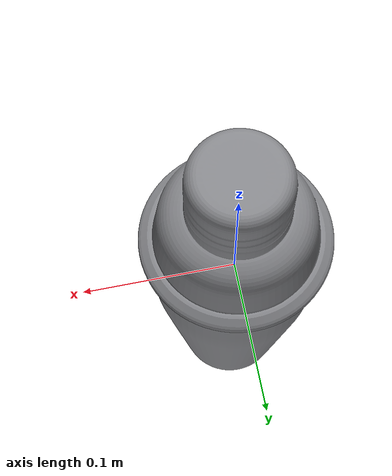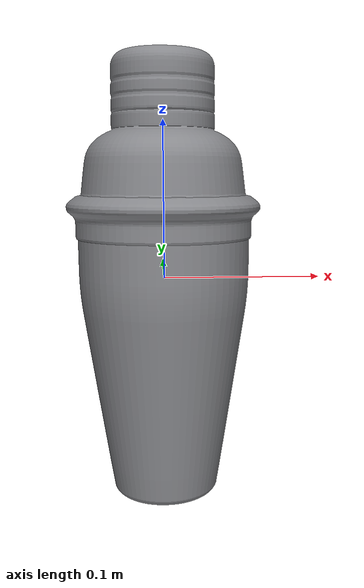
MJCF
<?xml version="1.0" ?>
<mujoco model="mixer">
	<compiler meshdir="mixer/meshes" texturedir="mixer/textures" angle="radian" autolimits="true" balanceinertia="true" boundmass="0.000001" boundinertia="0.000001"/>
	<default>
		<default class="visual">
			<geom contype="0" conaffinity="0"/>
		</default>
		<default class="collision">
			<geom rgba="1.0 0.0 0.0 0.0"/>
		</default>
	</default>
	<asset>
		<mesh name="MixerCover" file="stl/MixerCover.stl" scale="1.0 1.0 1.0"/>
		<mesh name="MixerCover_001" file="stl/MixerCover_001.stl" scale="1.0 1.0 1.0"/>
		<mesh name="MixerCover_002" file="stl/MixerCover_002.stl" scale="1.0 1.0 1.0"/>
		<mesh name="MixerCover_003" file="stl/MixerCover_003.stl" scale="1.0 1.0 1.0"/>
		<mesh name="MixerCover_004" file="stl/MixerCover_004.stl" scale="1.0 1.0 1.0"/>
		<mesh name="MixerCover_005" file="stl/MixerCover_005.stl" scale="1.0 1.0 1.0"/>
		<mesh name="MixerCover_006" file="stl/MixerCover_006.stl" scale="1.0 1.0 1.0"/>
		<mesh name="MixerCover_007" file="stl/MixerCover_007.stl" scale="1.0 1.0 1.0"/>
		<mesh name="MixerCover_008" file="stl/MixerCover_008.stl" scale="1.0 1.0 1.0"/>
		<mesh name="MixerCover_009" file="stl/MixerCover_009.stl" scale="1.0 1.0 1.0"/>
		<mesh name="MixerCover_010" file="stl/MixerCover_010.stl" scale="1.0 1.0 1.0"/>
		<mesh name="MixerCover_011" file="stl/MixerCover_011.stl" scale="1.0 1.0 1.0"/>
		<mesh name="MixerCover_012" file="stl/MixerCover_012.stl" scale="1.0 1.0 1.0"/>
		<mesh name="MixerCover_013" file="stl/MixerCover_013.stl" scale="1.0 1.0 1.0"/>
		<mesh name="MixerCover_014" file="stl/MixerCover_014.stl" scale="1.0 1.0 1.0"/>
		<mesh name="MixerCover_015" file="stl/MixerCover_015.stl" scale="1.0 1.0 1.0"/>
		<mesh name="MixerCover_016" file="stl/MixerCover_016.stl" scale="1.0 1.0 1.0"/>
		<mesh name="MixerCover_017" file="stl/MixerCover_017.stl" scale="1.0 1.0 1.0"/>
		<mesh name="MixerCover_018" file="stl/MixerCover_018.stl" scale="1.0 1.0 1.0"/>
		<mesh name="MixerCover_019" file="stl/MixerCover_019.stl" scale="1.0 1.0 1.0"/>
		<mesh name="MixerCover_020" file="stl/MixerCover_020.stl" scale="1.0 1.0 1.0"/>
		<mesh name="MixerCover_021" file="stl/MixerCover_021.stl" scale="1.0 1.0 1.0"/>
		<mesh name="MixerCover_022" file="stl/MixerCover_022.stl" scale="1.0 1.0 1.0"/>
		<mesh name="MixerCover_023" file="stl/MixerCover_023.stl" scale="1.0 1.0 1.0"/>
		<mesh name="MixerCover_024" file="stl/MixerCover_024.stl" scale="1.0 1.0 1.0"/>
		<mesh name="MixerCover_025" file="stl/MixerCover_025.stl" scale="1.0 1.0 1.0"/>
		<mesh name="MixerCover_026" file="stl/MixerCover_026.stl" scale="1.0 1.0 1.0"/>
		<mesh name="MixerCover_027" file="stl/MixerCover_027.stl" scale="1.0 1.0 1.0"/>
		<mesh name="MixerCover_028" file="stl/MixerCover_028.stl" scale="1.0 1.0 1.0"/>
		<mesh name="MixerCover_029" file="stl/MixerCover_029.stl" scale="1.0 1.0 1.0"/>
		<mesh name="MixerCover_030" file="stl/MixerCover_030.stl" scale="1.0 1.0 1.0"/>
		<mesh name="MixerCover_031" file="stl/MixerCover_031.stl" scale="1.0 1.0 1.0"/>
		<mesh name="MixerCover_032" file="stl/MixerCover_032.stl" scale="1.0 1.0 1.0"/>
		<mesh name="MixerCover_033" file="stl/MixerCover_033.stl" scale="1.0 1.0 1.0"/>
		<mesh name="MixerCover_034" file="stl/MixerCover_034.stl" scale="1.0 1.0 1.0"/>
		<mesh name="MixerCover_035" file="stl/MixerCover_035.stl" scale="1.0 1.0 1.0"/>
		<mesh name="MixerCover_036" file="stl/MixerCover_036.stl" scale="1.0 1.0 1.0"/>
		<mesh name="MixerCover_037" file="stl/MixerCover_037.stl" scale="1.0 1.0 1.0"/>
		<mesh name="MixerCover_038" file="stl/MixerCover_038.stl" scale="1.0 1.0 1.0"/>
		<mesh name="MixerCover_039" file="stl/MixerCover_039.stl" scale="1.0 1.0 1.0"/>
		<mesh name="MixerCover_040" file="stl/MixerCover_040.stl" scale="1.0 1.0 1.0"/>
		<mesh name="MixerCover_041" file="stl/MixerCover_041.stl" scale="1.0 1.0 1.0"/>
		<mesh name="MixerCover_042" file="stl/MixerCover_042.stl" scale="1.0 1.0 1.0"/>
		<mesh name="MixerCover_043" file="stl/MixerCover_043.stl" scale="1.0 1.0 1.0"/>
		<mesh name="MixerCover_044" file="stl/MixerCover_044.stl" scale="1.0 1.0 1.0"/>
		<mesh name="MixerCover_045" file="stl/MixerCover_045.stl" scale="1.0 1.0 1.0"/>
		<mesh name="MixerCover_046" file="stl/MixerCover_046.stl" scale="1.0 1.0 1.0"/>
		<mesh name="MixerCover_047" file="stl/MixerCover_047.stl" scale="1.0 1.0 1.0"/>
		<mesh name="MixerCover_048" file="stl/MixerCover_048.stl" scale="1.0 1.0 1.0"/>
		<mesh name="MixerCover_049" file="stl/MixerCover_049.stl" scale="1.0 1.0 1.0"/>
		<mesh name="MixerCover_050" file="stl/MixerCover_050.stl" scale="1.0 1.0 1.0"/>
		<mesh name="MixerCover_051" file="stl/MixerCover_051.stl" scale="1.0 1.0 1.0"/>
		<mesh name="MixerCover_052" file="stl/MixerCover_052.stl" scale="1.0 1.0 1.0"/>
		<mesh name="MixerCover_053" file="stl/MixerCover_053.stl" scale="1.0 1.0 1.0"/>
		<mesh name="MixerCover_054" file="stl/MixerCover_054.stl" scale="1.0 1.0 1.0"/>
		<mesh name="MixerCover_055" file="stl/MixerCover_055.stl" scale="1.0 1.0 1.0"/>
		<mesh name="MixerCover_056" file="stl/MixerCover_056.stl" scale="1.0 1.0 1.0"/>
		<mesh name="MixerCover_057" file="stl/MixerCover_057.stl" scale="1.0 1.0 1.0"/>
		<mesh name="MixerCover_058" file="stl/MixerCover_058.stl" scale="1.0 1.0 1.0"/>
		<mesh name="MixerCover_059" file="stl/MixerCover_059.stl" scale="1.0 1.0 1.0"/>
		<mesh name="MixerCover_060" file="stl/MixerCover_060.stl" scale="1.0 1.0 1.0"/>
		<mesh name="MixerCover_061" file="stl/MixerCover_061.stl" scale="1.0 1.0 1.0"/>
		<mesh name="MixerCover_062" file="stl/MixerCover_062.stl" scale="1.0 1.0 1.0"/>
		<mesh name="MixerCover_063" file="stl/MixerCover_063.stl" scale="1.0 1.0 1.0"/>
		<mesh name="MixerCover_064" file="stl/MixerCover_064.stl" scale="1.0 1.0 1.0"/>
		<mesh name="MixerCover_065" file="stl/MixerCover_065.stl" scale="1.0 1.0 1.0"/>
		<mesh name="MixerCover_066" file="stl/MixerCover_066.stl" scale="1.0 1.0 1.0"/>
		<mesh name="MixerCover_067" file="stl/MixerCover_067.stl" scale="1.0 1.0 1.0"/>
		<mesh name="MixerCover_068" file="stl/MixerCover_068.stl" scale="1.0 1.0 1.0"/>
		<mesh name="MixerCover_069" file="stl/MixerCover_069.stl" scale="1.0 1.0 1.0"/>
		<mesh name="MixerCover_070" file="stl/MixerCover_070.stl" scale="1.0 1.0 1.0"/>
		<mesh name="MixerCover_071" file="stl/MixerCover_071.stl" scale="1.0 1.0 1.0"/>
		<mesh name="MixerCover_072" file="stl/MixerCover_072.stl" scale="1.0 1.0 1.0"/>
		<mesh name="MixerCover_073" file="stl/MixerCover_073.stl" scale="1.0 1.0 1.0"/>
		<mesh name="MixerCover_074" file="stl/MixerCover_074.stl" scale="1.0 1.0 1.0"/>
		<mesh name="MixerCover_075" file="stl/MixerCover_075.stl" scale="1.0 1.0 1.0"/>
		<mesh name="MixerCover_076" file="stl/MixerCover_076.stl" scale="1.0 1.0 1.0"/>
		<mesh name="MixerCover_077" file="stl/MixerCover_077.stl" scale="1.0 1.0 1.0"/>
		<mesh name="MixerCover_078" file="stl/MixerCover_078.stl" scale="1.0 1.0 1.0"/>
		<mesh name="MixerCover_079" file="stl/MixerCover_079.stl" scale="1.0 1.0 1.0"/>
		<mesh name="MixerCover_080" file="stl/MixerCover_080.stl" scale="1.0 1.0 1.0"/>
		<mesh name="MixerCover_081" file="stl/MixerCover_081.stl" scale="1.0 1.0 1.0"/>
		<mesh name="MixerCover_082" file="stl/MixerCover_082.stl" scale="1.0 1.0 1.0"/>
		<mesh name="MixerCover_083" file="stl/MixerCover_083.stl" scale="1.0 1.0 1.0"/>
		<mesh name="MixerCover_084" file="stl/MixerCover_084.stl" scale="1.0 1.0 1.0"/>
		<mesh name="MixerCover_085" file="stl/MixerCover_085.stl" scale="1.0 1.0 1.0"/>
		<mesh name="MixerCover_086" file="stl/MixerCover_086.stl" scale="1.0 1.0 1.0"/>
		<mesh name="MixerCover_087" file="stl/MixerCover_087.stl" scale="1.0 1.0 1.0"/>
		<mesh name="MixerCover_088" file="stl/MixerCover_088.stl" scale="1.0 1.0 1.0"/>
		<mesh name="MixerCover_089" file="stl/MixerCover_089.stl" scale="1.0 1.0 1.0"/>
		<mesh name="MixerCover_090" file="stl/MixerCover_090.stl" scale="1.0 1.0 1.0"/>
		<mesh name="MixerCover_091" file="stl/MixerCover_091.stl" scale="1.0 1.0 1.0"/>
		<mesh name="MixerCover_092" file="stl/MixerCover_092.stl" scale="1.0 1.0 1.0"/>
		<mesh name="MixerCover_093" file="stl/MixerCover_093.stl" scale="1.0 1.0 1.0"/>
		<mesh name="MixerCover_094" file="stl/MixerCover_094.stl" scale="1.0 1.0 1.0"/>
		<mesh name="MixerCover_095" file="stl/MixerCover_095.stl" scale="1.0 1.0 1.0"/>
		<mesh name="MixerCover_096" file="stl/MixerCover_096.stl" scale="1.0 1.0 1.0"/>
		<mesh name="MixerCover_097" file="stl/MixerCover_097.stl" scale="1.0 1.0 1.0"/>
		<mesh name="MixerCover_098" file="stl/MixerCover_098.stl" scale="1.0 1.0 1.0"/>
		<mesh name="MixerCover_099" file="stl/MixerCover_099.stl" scale="1.0 1.0 1.0"/>
		<mesh name="MixerCover_100" file="stl/MixerCover_100.stl" scale="1.0 1.0 1.0"/>
		<mesh name="MixerCover_101" file="stl/MixerCover_101.stl" scale="1.0 1.0 1.0"/>
		<mesh name="MixerCover_102" file="stl/MixerCover_102.stl" scale="1.0 1.0 1.0"/>
		<mesh name="MixerCover_103" file="stl/MixerCover_103.stl" scale="1.0 1.0 1.0"/>
		<mesh name="MixerCover_104" file="stl/MixerCover_104.stl" scale="1.0 1.0 1.0"/>
		<mesh name="MixerCover_105" file="stl/MixerCover_105.stl" scale="1.0 1.0 1.0"/>
		<mesh name="MixerCover_106" file="stl/MixerCover_106.stl" scale="1.0 1.0 1.0"/>
		<mesh name="MixerCover_107" file="stl/MixerCover_107.stl" scale="1.0 1.0 1.0"/>
		<mesh name="MixerCover_108" file="stl/MixerCover_108.stl" scale="1.0 1.0 1.0"/>
		<mesh name="MixerCover_109" file="stl/MixerCover_109.stl" scale="1.0 1.0 1.0"/>
		<mesh name="MixerCover_110" file="stl/MixerCover_110.stl" scale="1.0 1.0 1.0"/>
		<mesh name="MixerCover_111" file="stl/MixerCover_111.stl" scale="1.0 1.0 1.0"/>
		<mesh name="MixerCup" file="stl/MixerCup.stl" scale="1.0 1.0 1.0"/>
		<mesh name="MixerCup_001" file="stl/MixerCup_001.stl" scale="1.0 1.0 1.0"/>
		<mesh name="MixerCup_002" file="stl/MixerCup_002.stl" scale="1.0 1.0 1.0"/>
		<mesh name="MixerCup_003" file="stl/MixerCup_003.stl" scale="1.0 1.0 1.0"/>
		<mesh name="MixerCup_004" file="stl/MixerCup_004.stl" scale="1.0 1.0 1.0"/>
		<mesh name="MixerCup_005" file="stl/MixerCup_005.stl" scale="1.0 1.0 1.0"/>
		<mesh name="MixerCup_006" file="stl/MixerCup_006.stl" scale="1.0 1.0 1.0"/>
		<mesh name="MixerCup_007" file="stl/MixerCup_007.stl" scale="1.0 1.0 1.0"/>
		<mesh name="MixerCup_008" file="stl/MixerCup_008.stl" scale="1.0 1.0 1.0"/>
		<mesh name="MixerCup_009" file="stl/MixerCup_009.stl" scale="1.0 1.0 1.0"/>
		<mesh name="MixerCup_010" file="stl/MixerCup_010.stl" scale="1.0 1.0 1.0"/>
		<mesh name="MixerCup_011" file="stl/MixerCup_011.stl" scale="1.0 1.0 1.0"/>
		<mesh name="MixerCup_012" file="stl/MixerCup_012.stl" scale="1.0 1.0 1.0"/>
		<mesh name="MixerCup_013" file="stl/MixerCup_013.stl" scale="1.0 1.0 1.0"/>
		<mesh name="MixerCup_014" file="stl/MixerCup_014.stl" scale="1.0 1.0 1.0"/>
		<mesh name="MixerCup_015" file="stl/MixerCup_015.stl" scale="1.0 1.0 1.0"/>
		<mesh name="MixerCup_016" file="stl/MixerCup_016.stl" scale="1.0 1.0 1.0"/>
		<mesh name="MixerCup_017" file="stl/MixerCup_017.stl" scale="1.0 1.0 1.0"/>
		<mesh name="MixerCup_018" file="stl/MixerCup_018.stl" scale="1.0 1.0 1.0"/>
		<mesh name="MixerCup_019" file="stl/MixerCup_019.stl" scale="1.0 1.0 1.0"/>
		<mesh name="MixerCup_020" file="stl/MixerCup_020.stl" scale="1.0 1.0 1.0"/>
		<mesh name="MixerCup_021" file="stl/MixerCup_021.stl" scale="1.0 1.0 1.0"/>
		<mesh name="MixerCup_022" file="stl/MixerCup_022.stl" scale="1.0 1.0 1.0"/>
		<mesh name="MixerCup_023" file="stl/MixerCup_023.stl" scale="1.0 1.0 1.0"/>
		<mesh name="MixerCup_024" file="stl/MixerCup_024.stl" scale="1.0 1.0 1.0"/>
		<mesh name="MixerCup_025" file="stl/MixerCup_025.stl" scale="1.0 1.0 1.0"/>
		<mesh name="MixerCup_026" file="stl/MixerCup_026.stl" scale="1.0 1.0 1.0"/>
		<mesh name="MixerCup_027" file="stl/MixerCup_027.stl" scale="1.0 1.0 1.0"/>
		<mesh name="MixerCup_028" file="stl/MixerCup_028.stl" scale="1.0 1.0 1.0"/>
		<mesh name="MixerCup_029" file="stl/MixerCup_029.stl" scale="1.0 1.0 1.0"/>
		<mesh name="MixerCup_030" file="stl/MixerCup_030.stl" scale="1.0 1.0 1.0"/>
		<mesh name="MixerCup_031" file="stl/MixerCup_031.stl" scale="1.0 1.0 1.0"/>
		<mesh name="MixerCup_032" file="stl/MixerCup_032.stl" scale="1.0 1.0 1.0"/>
		<mesh name="MixerCup_033" file="stl/MixerCup_033.stl" scale="1.0 1.0 1.0"/>
		<mesh name="MixerCup_034" file="stl/MixerCup_034.stl" scale="1.0 1.0 1.0"/>
		<mesh name="MixerCup_035" file="stl/MixerCup_035.stl" scale="1.0 1.0 1.0"/>
		<mesh name="MixerCup_036" file="stl/MixerCup_036.stl" scale="1.0 1.0 1.0"/>
		<mesh name="MixerCup_037" file="stl/MixerCup_037.stl" scale="1.0 1.0 1.0"/>
		<material name="M_MixerCover" rgba="0.5254999995231628 0.5293999910354614 0.5450999736785889 1.0" emission="0.0"/>
		<material name="M_MixerCup" rgba="0.5254999995231628 0.5293999910354614 0.5450999736785889 1.0" emission="0.0"/>
	</asset>
	<worldbody>
		<body name="mixer" pos="0.0 0.0 0.0" quat="1.0 0.0 0.0 0.0">
			<body name="mixer_cover" pos="0.0 0.0 0.0" quat="1.0 0.0 0.0 0.0">
				<inertial mass="6.394794940948486" pos="-1.0711189588619163e-06 -4.780318931807415e-07 0.06360410153865814" quat="-0.017323601990938187 0.706890344619751 0.01731915958225727 0.7068988084793091" diaginertia="0.007464394439011812 0.03619295731186867 0.036193035542964935"/>
				<geom name="MixerCover" type="mesh" pos="0.0 0.0 0.0" quat="1.0 0.0 0.0 0.0" mesh="MixerCover" material="M_MixerCover" class="visual"/>
				<geom name="MixerCover_001" type="mesh" pos="0.0 0.0 0.0" quat="1.0 0.0 0.0 0.0" mesh="MixerCover_001" class="collision"/>
				<geom name="MixerCover_002" type="mesh" pos="0.0 0.0 0.0" quat="1.0 0.0 0.0 0.0" mesh="MixerCover_002" class="collision"/>
				<geom name="MixerCover_003" type="mesh" pos="0.0 0.0 0.0" quat="1.0 0.0 0.0 0.0" mesh="MixerCover_003" class="collision"/>
				<geom name="MixerCover_004" type="mesh" pos="0.0 0.0 0.0" quat="1.0 0.0 0.0 0.0" mesh="MixerCover_004" class="collision"/>
				<geom name="MixerCover_005" type="mesh" pos="0.0 0.0 0.0" quat="1.0 0.0 0.0 0.0" mesh="MixerCover_005" class="collision"/>
				<geom name="MixerCover_006" type="mesh" pos="0.0 0.0 0.0" quat="1.0 0.0 0.0 0.0" mesh="MixerCover_006" class="collision"/>
				<geom name="MixerCover_007" type="mesh" pos="0.0 0.0 0.0" quat="1.0 0.0 0.0 0.0" mesh="MixerCover_007" class="collision"/>
				<geom name="MixerCover_008" type="mesh" pos="0.0 0.0 0.0" quat="1.0 0.0 0.0 0.0" mesh="MixerCover_008" class="collision"/>
				<geom name="MixerCover_009" type="mesh" pos="0.0 0.0 0.0" quat="1.0 0.0 0.0 0.0" mesh="MixerCover_009" class="collision"/>
				<geom name="MixerCover_010" type="mesh" pos="0.0 0.0 0.0" quat="1.0 0.0 0.0 0.0" mesh="MixerCover_010" class="collision"/>
				<geom name="MixerCover_011" type="mesh" pos="0.0 0.0 0.0" quat="1.0 0.0 0.0 0.0" mesh="MixerCover_011" class="collision"/>
				<geom name="MixerCover_012" type="mesh" pos="0.0 0.0 0.0" quat="1.0 0.0 0.0 0.0" mesh="MixerCover_012" class="collision"/>
				<geom name="MixerCover_013" type="mesh" pos="0.0 0.0 0.0" quat="1.0 0.0 0.0 0.0" mesh="MixerCover_013" class="collision"/>
				<geom name="MixerCover_014" type="mesh" pos="0.0 0.0 0.0" quat="1.0 0.0 0.0 0.0" mesh="MixerCover_014" class="collision"/>
				<geom name="MixerCover_015" type="mesh" pos="0.0 0.0 0.0" quat="1.0 0.0 0.0 0.0" mesh="MixerCover_015" class="collision"/>
				<geom name="MixerCover_016" type="mesh" pos="0.0 0.0 0.0" quat="1.0 0.0 0.0 0.0" mesh="MixerCover_016" class="collision"/>
				<geom name="MixerCover_017" type="mesh" pos="0.0 0.0 0.0" quat="1.0 0.0 0.0 0.0" mesh="MixerCover_017" class="collision"/>
				<geom name="MixerCover_018" type="mesh" pos="0.0 0.0 0.0" quat="1.0 0.0 0.0 0.0" mesh="MixerCover_018" class="collision"/>
				<geom name="MixerCover_019" type="mesh" pos="0.0 0.0 0.0" quat="1.0 0.0 0.0 0.0" mesh="MixerCover_019" class="collision"/>
				<geom name="MixerCover_020" type="mesh" pos="0.0 0.0 0.0" quat="1.0 0.0 0.0 0.0" mesh="MixerCover_020" class="collision"/>
				<geom name="MixerCover_021" type="mesh" pos="0.0 0.0 0.0" quat="1.0 0.0 0.0 0.0" mesh="MixerCover_021" class="collision"/>
				<geom name="MixerCover_022" type="mesh" pos="0.0 0.0 0.0" quat="1.0 0.0 0.0 0.0" mesh="MixerCover_022" class="collision"/>
				<geom name="MixerCover_023" type="mesh" pos="0.0 0.0 0.0" quat="1.0 0.0 0.0 0.0" mesh="MixerCover_023" class="collision"/>
				<geom name="MixerCover_024" type="mesh" pos="0.0 0.0 0.0" quat="1.0 0.0 0.0 0.0" mesh="MixerCover_024" class="collision"/>
				<geom name="MixerCover_025" type="mesh" pos="0.0 0.0 0.0" quat="1.0 0.0 0.0 0.0" mesh="MixerCover_025" class="collision"/>
				<geom name="MixerCover_026" type="mesh" pos="0.0 0.0 0.0" quat="1.0 0.0 0.0 0.0" mesh="MixerCover_026" class="collision"/>
				<geom name="MixerCover_027" type="mesh" pos="0.0 0.0 0.0" quat="1.0 0.0 0.0 0.0" mesh="MixerCover_027" class="collision"/>
				<geom name="MixerCover_028" type="mesh" pos="0.0 0.0 0.0" quat="1.0 0.0 0.0 0.0" mesh="MixerCover_028" class="collision"/>
				<geom name="MixerCover_029" type="mesh" pos="0.0 0.0 0.0" quat="1.0 0.0 0.0 0.0" mesh="MixerCover_029" class="collision"/>
				<geom name="MixerCover_030" type="mesh" pos="0.0 0.0 0.0" quat="1.0 0.0 0.0 0.0" mesh="MixerCover_030" class="collision"/>
				<geom name="MixerCover_031" type="mesh" pos="0.0 0.0 0.0" quat="1.0 0.0 0.0 0.0" mesh="MixerCover_031" class="collision"/>
				<geom name="MixerCover_032" type="mesh" pos="0.0 0.0 0.0" quat="1.0 0.0 0.0 0.0" mesh="MixerCover_032" class="collision"/>
				<geom name="MixerCover_033" type="mesh" pos="0.0 0.0 0.0" quat="1.0 0.0 0.0 0.0" mesh="MixerCover_033" class="collision"/>
				<geom name="MixerCover_034" type="mesh" pos="0.0 0.0 0.0" quat="1.0 0.0 0.0 0.0" mesh="MixerCover_034" class="collision"/>
				<geom name="MixerCover_035" type="mesh" pos="0.0 0.0 0.0" quat="1.0 0.0 0.0 0.0" mesh="MixerCover_035" class="collision"/>
				<geom name="MixerCover_036" type="mesh" pos="0.0 0.0 0.0" quat="1.0 0.0 0.0 0.0" mesh="MixerCover_036" class="collision"/>
				<geom name="MixerCover_037" type="mesh" pos="0.0 0.0 0.0" quat="1.0 0.0 0.0 0.0" mesh="MixerCover_037" class="collision"/>
				<geom name="MixerCover_038" type="mesh" pos="0.0 0.0 0.0" quat="1.0 0.0 0.0 0.0" mesh="MixerCover_038" class="collision"/>
				<geom name="MixerCover_039" type="mesh" pos="0.0 0.0 0.0" quat="1.0 0.0 0.0 0.0" mesh="MixerCover_039" class="collision"/>
				<geom name="MixerCover_040" type="mesh" pos="0.0 0.0 0.0" quat="1.0 0.0 0.0 0.0" mesh="MixerCover_040" class="collision"/>
				<geom name="MixerCover_041" type="mesh" pos="0.0 0.0 0.0" quat="1.0 0.0 0.0 0.0" mesh="MixerCover_041" class="collision"/>
				<geom name="MixerCover_042" type="mesh" pos="0.0 0.0 0.0" quat="1.0 0.0 0.0 0.0" mesh="MixerCover_042" class="collision"/>
				<geom name="MixerCover_043" type="mesh" pos="0.0 0.0 0.0" quat="1.0 0.0 0.0 0.0" mesh="MixerCover_043" class="collision"/>
				<geom name="MixerCover_044" type="mesh" pos="0.0 0.0 0.0" quat="1.0 0.0 0.0 0.0" mesh="MixerCover_044" class="collision"/>
				<geom name="MixerCover_045" type="mesh" pos="0.0 0.0 0.0" quat="1.0 0.0 0.0 0.0" mesh="MixerCover_045" class="collision"/>
				<geom name="MixerCover_046" type="mesh" pos="0.0 0.0 0.0" quat="1.0 0.0 0.0 0.0" mesh="MixerCover_046" class="collision"/>
				<geom name="MixerCover_047" type="mesh" pos="0.0 0.0 0.0" quat="1.0 0.0 0.0 0.0" mesh="MixerCover_047" class="collision"/>
				<geom name="MixerCover_048" type="mesh" pos="0.0 0.0 0.0" quat="1.0 0.0 0.0 0.0" mesh="MixerCover_048" class="collision"/>
				<geom name="MixerCover_049" type="mesh" pos="0.0 0.0 0.0" quat="1.0 0.0 0.0 0.0" mesh="MixerCover_049" class="collision"/>
				<geom name="MixerCover_050" type="mesh" pos="0.0 0.0 0.0" quat="1.0 0.0 0.0 0.0" mesh="MixerCover_050" class="collision"/>
				<geom name="MixerCover_051" type="mesh" pos="0.0 0.0 0.0" quat="1.0 0.0 0.0 0.0" mesh="MixerCover_051" class="collision"/>
				<geom name="MixerCover_052" type="mesh" pos="0.0 0.0 0.0" quat="1.0 0.0 0.0 0.0" mesh="MixerCover_052" class="collision"/>
				<geom name="MixerCover_053" type="mesh" pos="0.0 0.0 0.0" quat="1.0 0.0 0.0 0.0" mesh="MixerCover_053" class="collision"/>
				<geom name="MixerCover_054" type="mesh" pos="0.0 0.0 0.0" quat="1.0 0.0 0.0 0.0" mesh="MixerCover_054" class="collision"/>
				<geom name="MixerCover_055" type="mesh" pos="0.0 0.0 0.0" quat="1.0 0.0 0.0 0.0" mesh="MixerCover_055" class="collision"/>
				<geom name="MixerCover_056" type="mesh" pos="0.0 0.0 0.0" quat="1.0 0.0 0.0 0.0" mesh="MixerCover_056" class="collision"/>
				<geom name="MixerCover_057" type="mesh" pos="0.0 0.0 0.0" quat="1.0 0.0 0.0 0.0" mesh="MixerCover_057" class="collision"/>
				<geom name="MixerCover_058" type="mesh" pos="0.0 0.0 0.0" quat="1.0 0.0 0.0 0.0" mesh="MixerCover_058" class="collision"/>
				<geom name="MixerCover_059" type="mesh" pos="0.0 0.0 0.0" quat="1.0 0.0 0.0 0.0" mesh="MixerCover_059" class="collision"/>
				<geom name="MixerCover_060" type="mesh" pos="0.0 0.0 0.0" quat="1.0 0.0 0.0 0.0" mesh="MixerCover_060" class="collision"/>
				<geom name="MixerCover_061" type="mesh" pos="0.0 0.0 0.0" quat="1.0 0.0 0.0 0.0" mesh="MixerCover_061" class="collision"/>
				<geom name="MixerCover_062" type="mesh" pos="0.0 0.0 0.0" quat="1.0 0.0 0.0 0.0" mesh="MixerCover_062" class="collision"/>
				<geom name="MixerCover_063" type="mesh" pos="0.0 0.0 0.0" quat="1.0 0.0 0.0 0.0" mesh="MixerCover_063" class="collision"/>
				<geom name="MixerCover_064" type="mesh" pos="0.0 0.0 0.0" quat="1.0 0.0 0.0 0.0" mesh="MixerCover_064" class="collision"/>
				<geom name="MixerCover_065" type="mesh" pos="0.0 0.0 0.0" quat="1.0 0.0 0.0 0.0" mesh="MixerCover_065" class="collision"/>
				<geom name="MixerCover_066" type="mesh" pos="0.0 0.0 0.0" quat="1.0 0.0 0.0 0.0" mesh="MixerCover_066" class="collision"/>
				<geom name="MixerCover_067" type="mesh" pos="0.0 0.0 0.0" quat="1.0 0.0 0.0 0.0" mesh="MixerCover_067" class="collision"/>
				<geom name="MixerCover_068" type="mesh" pos="0.0 0.0 0.0" quat="1.0 0.0 0.0 0.0" mesh="MixerCover_068" class="collision"/>
				<geom name="MixerCover_069" type="mesh" pos="0.0 0.0 0.0" quat="1.0 0.0 0.0 0.0" mesh="MixerCover_069" class="collision"/>
				<geom name="MixerCover_070" type="mesh" pos="0.0 0.0 0.0" quat="1.0 0.0 0.0 0.0" mesh="MixerCover_070" class="collision"/>
				<geom name="MixerCover_071" type="mesh" pos="0.0 0.0 0.0" quat="1.0 0.0 0.0 0.0" mesh="MixerCover_071" class="collision"/>
				<geom name="MixerCover_072" type="mesh" pos="0.0 0.0 0.0" quat="1.0 0.0 0.0 0.0" mesh="MixerCover_072" class="collision"/>
				<geom name="MixerCover_073" type="mesh" pos="0.0 0.0 0.0" quat="1.0 0.0 0.0 0.0" mesh="MixerCover_073" class="collision"/>
				<geom name="MixerCover_074" type="mesh" pos="0.0 0.0 0.0" quat="1.0 0.0 0.0 0.0" mesh="MixerCover_074" class="collision"/>
				<geom name="MixerCover_075" type="mesh" pos="0.0 0.0 0.0" quat="1.0 0.0 0.0 0.0" mesh="MixerCover_075" class="collision"/>
				<geom name="MixerCover_076" type="mesh" pos="0.0 0.0 0.0" quat="1.0 0.0 0.0 0.0" mesh="MixerCover_076" class="collision"/>
				<geom name="MixerCover_077" type="mesh" pos="0.0 0.0 0.0" quat="1.0 0.0 0.0 0.0" mesh="MixerCover_077" class="collision"/>
				<geom name="MixerCover_078" type="mesh" pos="0.0 0.0 0.0" quat="1.0 0.0 0.0 0.0" mesh="MixerCover_078" class="collision"/>
				<geom name="MixerCover_079" type="mesh" pos="0.0 0.0 0.0" quat="1.0 0.0 0.0 0.0" mesh="MixerCover_079" class="collision"/>
				<geom name="MixerCover_080" type="mesh" pos="0.0 0.0 0.0" quat="1.0 0.0 0.0 0.0" mesh="MixerCover_080" class="collision"/>
				<geom name="MixerCover_081" type="mesh" pos="0.0 0.0 0.0" quat="1.0 0.0 0.0 0.0" mesh="MixerCover_081" class="collision"/>
				<geom name="MixerCover_082" type="mesh" pos="0.0 0.0 0.0" quat="1.0 0.0 0.0 0.0" mesh="MixerCover_082" class="collision"/>
				<geom name="MixerCover_083" type="mesh" pos="0.0 0.0 0.0" quat="1.0 0.0 0.0 0.0" mesh="MixerCover_083" class="collision"/>
				<geom name="MixerCover_084" type="mesh" pos="0.0 0.0 0.0" quat="1.0 0.0 0.0 0.0" mesh="MixerCover_084" class="collision"/>
				<geom name="MixerCover_085" type="mesh" pos="0.0 0.0 0.0" quat="1.0 0.0 0.0 0.0" mesh="MixerCover_085" class="collision"/>
				<geom name="MixerCover_086" type="mesh" pos="0.0 0.0 0.0" quat="1.0 0.0 0.0 0.0" mesh="MixerCover_086" class="collision"/>
				<geom name="MixerCover_087" type="mesh" pos="0.0 0.0 0.0" quat="1.0 0.0 0.0 0.0" mesh="MixerCover_087" class="collision"/>
				<geom name="MixerCover_088" type="mesh" pos="0.0 0.0 0.0" quat="1.0 0.0 0.0 0.0" mesh="MixerCover_088" class="collision"/>
				<geom name="MixerCover_089" type="mesh" pos="0.0 0.0 0.0" quat="1.0 0.0 0.0 0.0" mesh="MixerCover_089" class="collision"/>
				<geom name="MixerCover_090" type="mesh" pos="0.0 0.0 0.0" quat="1.0 0.0 0.0 0.0" mesh="MixerCover_090" class="collision"/>
				<geom name="MixerCover_091" type="mesh" pos="0.0 0.0 0.0" quat="1.0 0.0 0.0 0.0" mesh="MixerCover_091" class="collision"/>
				<geom name="MixerCover_092" type="mesh" pos="0.0 0.0 0.0" quat="1.0 0.0 0.0 0.0" mesh="MixerCover_092" class="collision"/>
				<geom name="MixerCover_093" type="mesh" pos="0.0 0.0 0.0" quat="1.0 0.0 0.0 0.0" mesh="MixerCover_093" class="collision"/>
				<geom name="MixerCover_094" type="mesh" pos="0.0 0.0 0.0" quat="1.0 0.0 0.0 0.0" mesh="MixerCover_094" class="collision"/>
				<geom name="MixerCover_095" type="mesh" pos="0.0 0.0 0.0" quat="1.0 0.0 0.0 0.0" mesh="MixerCover_095" class="collision"/>
				<geom name="MixerCover_096" type="mesh" pos="0.0 0.0 0.0" quat="1.0 0.0 0.0 0.0" mesh="MixerCover_096" class="collision"/>
				<geom name="MixerCover_097" type="mesh" pos="0.0 0.0 0.0" quat="1.0 0.0 0.0 0.0" mesh="MixerCover_097" class="collision"/>
				<geom name="MixerCover_098" type="mesh" pos="0.0 0.0 0.0" quat="1.0 0.0 0.0 0.0" mesh="MixerCover_098" class="collision"/>
				<geom name="MixerCover_099" type="mesh" pos="0.0 0.0 0.0" quat="1.0 0.0 0.0 0.0" mesh="MixerCover_099" class="collision"/>
				<geom name="MixerCover_100" type="mesh" pos="0.0 0.0 0.0" quat="1.0 0.0 0.0 0.0" mesh="MixerCover_100" class="collision"/>
				<geom name="MixerCover_101" type="mesh" pos="0.0 0.0 0.0" quat="1.0 0.0 0.0 0.0" mesh="MixerCover_101" class="collision"/>
				<geom name="MixerCover_102" type="mesh" pos="0.0 0.0 0.0" quat="1.0 0.0 0.0 0.0" mesh="MixerCover_102" class="collision"/>
				<geom name="MixerCover_103" type="mesh" pos="0.0 0.0 0.0" quat="1.0 0.0 0.0 0.0" mesh="MixerCover_103" class="collision"/>
				<geom name="MixerCover_104" type="mesh" pos="0.0 0.0 0.0" quat="1.0 0.0 0.0 0.0" mesh="MixerCover_104" class="collision"/>
				<geom name="MixerCover_105" type="mesh" pos="0.0 0.0 0.0" quat="1.0 0.0 0.0 0.0" mesh="MixerCover_105" class="collision"/>
				<geom name="MixerCover_106" type="mesh" pos="0.0 0.0 0.0" quat="1.0 0.0 0.0 0.0" mesh="MixerCover_106" class="collision"/>
				<geom name="MixerCover_107" type="mesh" pos="0.0 0.0 0.0" quat="1.0 0.0 0.0 0.0" mesh="MixerCover_107" class="collision"/>
				<geom name="MixerCover_108" type="mesh" pos="0.0 0.0 0.0" quat="1.0 0.0 0.0 0.0" mesh="MixerCover_108" class="collision"/>
				<geom name="MixerCover_109" type="mesh" pos="0.0 0.0 0.0" quat="1.0 0.0 0.0 0.0" mesh="MixerCover_109" class="collision"/>
				<geom name="MixerCover_110" type="mesh" pos="0.0 0.0 0.0" quat="1.0 0.0 0.0 0.0" mesh="MixerCover_110" class="collision"/>
				<geom name="MixerCover_111" type="mesh" pos="0.0 0.0 0.0" quat="1.0 0.0 0.0 0.0" mesh="MixerCover_111" class="collision"/>
			</body>
			<body name="mixer_cup" pos="0.0 0.0 0.0" quat="1.0 0.0 0.0 0.0">
				<inertial mass="8.871996879577637" pos="-1.7645579646341503e-06 -5.248667207524704e-07 -0.042765483260154724" quat="0.5020855069160461 0.4978981912136078 0.5020849704742432 -0.4979139268398285" diaginertia="0.01072021946310997 0.040611784905195236 0.040611863136291504"/>
				<geom name="MixerCup" type="mesh" pos="0.0 0.0 0.0" quat="1.0 0.0 0.0 0.0" mesh="MixerCup" material="M_MixerCup" class="visual"/>
				<geom name="MixerCup_001" type="mesh" pos="0.0 0.0 0.0" quat="1.0 0.0 0.0 0.0" mesh="MixerCup_001" class="collision"/>
				<geom name="MixerCup_002" type="mesh" pos="0.0 0.0 0.0" quat="1.0 0.0 0.0 0.0" mesh="MixerCup_002" class="collision"/>
				<geom name="MixerCup_003" type="mesh" pos="0.0 0.0 0.0" quat="1.0 0.0 0.0 0.0" mesh="MixerCup_003" class="collision"/>
				<geom name="MixerCup_004" type="mesh" pos="0.0 0.0 0.0" quat="1.0 0.0 0.0 0.0" mesh="MixerCup_004" class="collision"/>
				<geom name="MixerCup_005" type="mesh" pos="0.0 0.0 0.0" quat="1.0 0.0 0.0 0.0" mesh="MixerCup_005" class="collision"/>
				<geom name="MixerCup_006" type="mesh" pos="0.0 0.0 0.0" quat="1.0 0.0 0.0 0.0" mesh="MixerCup_006" class="collision"/>
				<geom name="MixerCup_007" type="mesh" pos="0.0 0.0 0.0" quat="1.0 0.0 0.0 0.0" mesh="MixerCup_007" class="collision"/>
				<geom name="MixerCup_008" type="mesh" pos="0.0 0.0 0.0" quat="1.0 0.0 0.0 0.0" mesh="MixerCup_008" class="collision"/>
				<geom name="MixerCup_009" type="mesh" pos="0.0 0.0 0.0" quat="1.0 0.0 0.0 0.0" mesh="MixerCup_009" class="collision"/>
				<geom name="MixerCup_010" type="mesh" pos="0.0 0.0 0.0" quat="1.0 0.0 0.0 0.0" mesh="MixerCup_010" class="collision"/>
				<geom name="MixerCup_011" type="mesh" pos="0.0 0.0 0.0" quat="1.0 0.0 0.0 0.0" mesh="MixerCup_011" class="collision"/>
				<geom name="MixerCup_012" type="mesh" pos="0.0 0.0 0.0" quat="1.0 0.0 0.0 0.0" mesh="MixerCup_012" class="collision"/>
				<geom name="MixerCup_013" type="mesh" pos="0.0 0.0 0.0" quat="1.0 0.0 0.0 0.0" mesh="MixerCup_013" class="collision"/>
				<geom name="MixerCup_014" type="mesh" pos="0.0 0.0 0.0" quat="1.0 0.0 0.0 0.0" mesh="MixerCup_014" class="collision"/>
				<geom name="MixerCup_015" type="mesh" pos="0.0 0.0 0.0" quat="1.0 0.0 0.0 0.0" mesh="MixerCup_015" class="collision"/>
				<geom name="MixerCup_016" type="mesh" pos="0.0 0.0 0.0" quat="1.0 0.0 0.0 0.0" mesh="MixerCup_016" class="collision"/>
				<geom name="MixerCup_017" type="mesh" pos="0.0 0.0 0.0" quat="1.0 0.0 0.0 0.0" mesh="MixerCup_017" class="collision"/>
				<geom name="MixerCup_018" type="mesh" pos="0.0 0.0 0.0" quat="1.0 0.0 0.0 0.0" mesh="MixerCup_018" class="collision"/>
				<geom name="MixerCup_019" type="mesh" pos="0.0 0.0 0.0" quat="1.0 0.0 0.0 0.0" mesh="MixerCup_019" class="collision"/>
				<geom name="MixerCup_020" type="mesh" pos="0.0 0.0 0.0" quat="1.0 0.0 0.0 0.0" mesh="MixerCup_020" class="collision"/>
				<geom name="MixerCup_021" type="mesh" pos="0.0 0.0 0.0" quat="1.0 0.0 0.0 0.0" mesh="MixerCup_021" class="collision"/>
				<geom name="MixerCup_022" type="mesh" pos="0.0 0.0 0.0" quat="1.0 0.0 0.0 0.0" mesh="MixerCup_022" class="collision"/>
				<geom name="MixerCup_023" type="mesh" pos="0.0 0.0 0.0" quat="1.0 0.0 0.0 0.0" mesh="MixerCup_023" class="collision"/>
				<geom name="MixerCup_024" type="mesh" pos="0.0 0.0 0.0" quat="1.0 0.0 0.0 0.0" mesh="MixerCup_024" class="collision"/>
				<geom name="MixerCup_025" type="mesh" pos="0.0 0.0 0.0" quat="1.0 0.0 0.0 0.0" mesh="MixerCup_025" class="collision"/>
				<geom name="MixerCup_026" type="mesh" pos="0.0 0.0 0.0" quat="1.0 0.0 0.0 0.0" mesh="MixerCup_026" class="collision"/>
				<geom name="MixerCup_027" type="mesh" pos="0.0 0.0 0.0" quat="1.0 0.0 0.0 0.0" mesh="MixerCup_027" class="collision"/>
				<geom name="MixerCup_028" type="mesh" pos="0.0 0.0 0.0" quat="1.0 0.0 0.0 0.0" mesh="MixerCup_028" class="collision"/>
				<geom name="MixerCup_029" type="mesh" pos="0.0 0.0 0.0" quat="1.0 0.0 0.0 0.0" mesh="MixerCup_029" class="collision"/>
				<geom name="MixerCup_030" type="mesh" pos="0.0 0.0 0.0" quat="1.0 0.0 0.0 0.0" mesh="MixerCup_030" class="collision"/>
				<geom name="MixerCup_031" type="mesh" pos="0.0 0.0 0.0" quat="1.0 0.0 0.0 0.0" mesh="MixerCup_031" class="collision"/>
				<geom name="MixerCup_032" type="mesh" pos="0.0 0.0 0.0" quat="1.0 0.0 0.0 0.0" mesh="MixerCup_032" class="collision"/>
				<geom name="MixerCup_033" type="mesh" pos="0.0 0.0 0.0" quat="1.0 0.0 0.0 0.0" mesh="MixerCup_033" class="collision"/>
				<geom name="MixerCup_034" type="mesh" pos="0.0 0.0 0.0" quat="1.0 0.0 0.0 0.0" mesh="MixerCup_034" class="collision"/>
				<geom name="MixerCup_035" type="mesh" pos="0.0 0.0 0.0" quat="1.0 0.0 0.0 0.0" mesh="MixerCup_035" class="collision"/>
				<geom name="MixerCup_036" type="mesh" pos="0.0 0.0 0.0" quat="1.0 0.0 0.0 0.0" mesh="MixerCup_036" class="collision"/>
				<geom name="MixerCup_037" type="mesh" pos="0.0 0.0 0.0" quat="1.0 0.0 0.0 0.0" mesh="MixerCup_037" class="collision"/>
			</body>
		</body>
	</worldbody>
	<equality/>
</mujoco>
